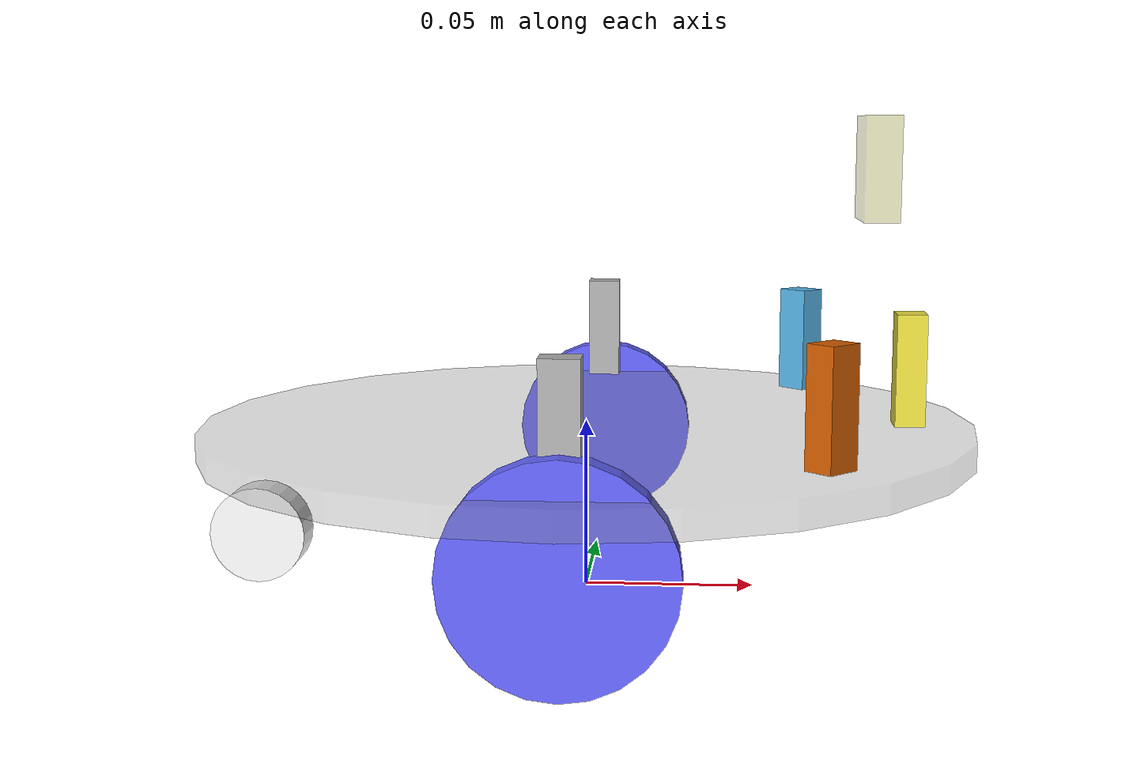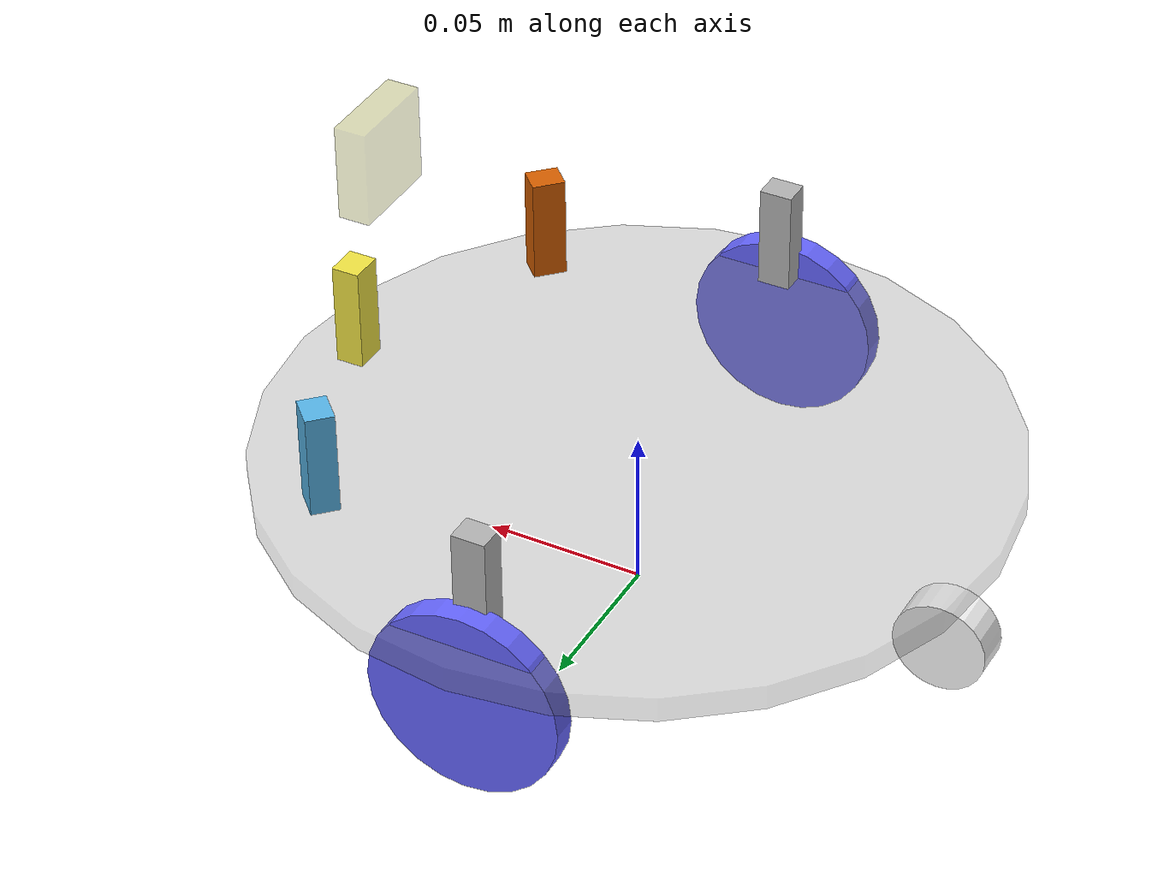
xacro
<?xml version="1.0" encoding="UTF-8" ?>
<robot name="prsg2_robot" xmlns:xacro="http://www.ros.org/wiki/xacro">

  <!-- Create a URDF file from this like this:

      rosrun xacro xacro path-tothis-file > path-to-urdf-output

  -->

  <xacro:property name="degree" value="${pi / 180}" />
  <xacro:property name="inch" value="0.0254" />

  <xacro:property name="base_diameter" value="${9 * inch}" />
  <xacro:property name="base_thickness" value="0.008" />
  <xacro:property name="deck_height" value="0.050" />

  <xacro:property name="wheel_diameter" value="0.060" />
  <xacro:property name="wheel_thickness" value="0.008" />
  <xacro:property name="wheel_separation" value="0.203" />

  <xacro:property name="caster_diameter" value="0.029" />
  <xacro:property name="caster_thickness" value="0.012" />
  <xacro:property name="caster_setback" value="${caster_diameter / 2}" />

  <xacro:property name="ir_setback" value="0.015" />

  <xacro:property name="camera_height" value="0.075" />
  <xacro:property name="camera_setback" value="0.025" />

  <xacro:macro name="material_color" params="r g b a:=1.0">
    <material>
      <color rgba="${r} ${g} ${b} ${a}" />
    </material>
  </xacro:macro>

  <xacro:macro name="polar_position" params="r theta z:=0 l0 l1 angle:=0">
    <link name="${l1}_ray_link" />
    <joint name="${l0}_to_${l1}_ray" type="fixed">
      <parent link="${l0}" />
      <child link="${l1}_ray_link" />
      <origin rpy="0 0 ${theta}" />
    </joint>
    <joint name="${l1}_ray_to_${l1}" type="fixed">
      <parent link="${l1}_ray_link" />
      <child link="${l1}" />
      <origin xyz="${r} 0 ${z}" rpy="0 0 ${angle}" />
    </joint>
  </xacro:macro>

  <!-- The robot description -->

  <link name="base_link">
    <visual>
      <origin xyz="0 0 ${deck_height - base_thickness/2}" rpy="0 0 0" />
      <geometry>
        <cylinder length="${base_thickness}" radius="${base_diameter / 2}" />
      </geometry>
      <xacro:material_color r="0.5" g="0.5" b="0.5" a="0.3" />
    </visual>
  </link>

  <xacro:macro name="wheel" params="link_name relative_link r theta">
    <link name="${link_name}">
      <visual>
        <origin xyz="0 0 0" rpy="${90 * degree} 0 0" />
        <geometry>
          <cylinder length="${wheel_thickness}" radius="${wheel_diameter / 2}" />
        </geometry>
        <xacro:material_color r="0.4" g="0.4" b="1.0" />
      </visual>
    </link>
    <xacro:polar_position r="${r}" theta="${theta}" z="${wheel_diameter / 2}"
      l0="${relative_link}" l1="${link_name}"
      angle="${- theta}" />
  </xacro:macro>

  <xacro:wheel link_name="left_wheel_link" relative_link="base_link"
    r="${wheel_separation / 2}" theta="${90 * degree}" />

  <xacro:wheel link_name="right_wheel_link" relative_link="base_link"
    r="${wheel_separation / 2}" theta="${-90 * degree}" />

  <link name="rear_caster_link">
    <visual>
      <origin rpy="${90 * degree} 0 0" />
      <geometry>
        <cylinder length="${caster_thickness}" radius="${caster_diameter/2}" />
      </geometry>
      <xacro:material_color r="1.0" g="1.0" b="1.0" />
    </visual>
  </link>
  <xacro:polar_position
    r="${base_diameter/2 - caster_setback}"
    theta="${-180 * degree}" angle="${180 * degree}"
    z="${caster_diameter / 2}"
    l0="base_link" l1="rear_caster_link" />

  <xacro:macro name="ir_sensor" params="link_name theta z:=0.019 angle:=0">
    <link name="${link_name}">
      <visual>
        <origin xyz="-0.004385 0 -0.00249" rpy="0 0 0" />
        <geometry>
          <!-- Dimensions taken from Pololu dimensional diagram:
            https://www.pololu.com/file/0J817/sds02a-dimensions.pdf -->
          <box size="0.00877 0.01041 0.03302" />
        </geometry>
      </visual>
    </link>
    <xacro:polar_position r="${base_diameter/2 - ir_setback}"
      theta="${theta}" z="${deck_height + z}" angle="${angle}"
      l0="base_link" l1="${link_name}" />
  </xacro:macro>

  <xacro:ir_sensor link_name="ir_left_link" theta="${90 * degree}" />
  <xacro:ir_sensor link_name="ir_left_front_link" theta="${45 * degree}" />
  <xacro:ir_sensor link_name="ir_front_link" theta="${0 * degree}" />
  <xacro:ir_sensor link_name="ir_right_front_link" theta="${-45 * degree}" />
  <xacro:ir_sensor link_name="ir_right_link" theta="${-90 * degree}" />

  <link name="camera_link">
    <visual>
      <origin xyz="-0.005 0 0" />
      <geometry>
        <box size="0.01 0.03 0.03" />
      </geometry>
      <material name="Yellow">
        <color rgba="0.5 0.5 0.0 0.3" />
      </material>
    </visual>
  </link>
  <xacro:polar_position r="${base_diameter/2 - camera_setback}" theta="0"
    z="${deck_height + camera_height}" l0="base_link" l1="camera_link" />

</robot>
